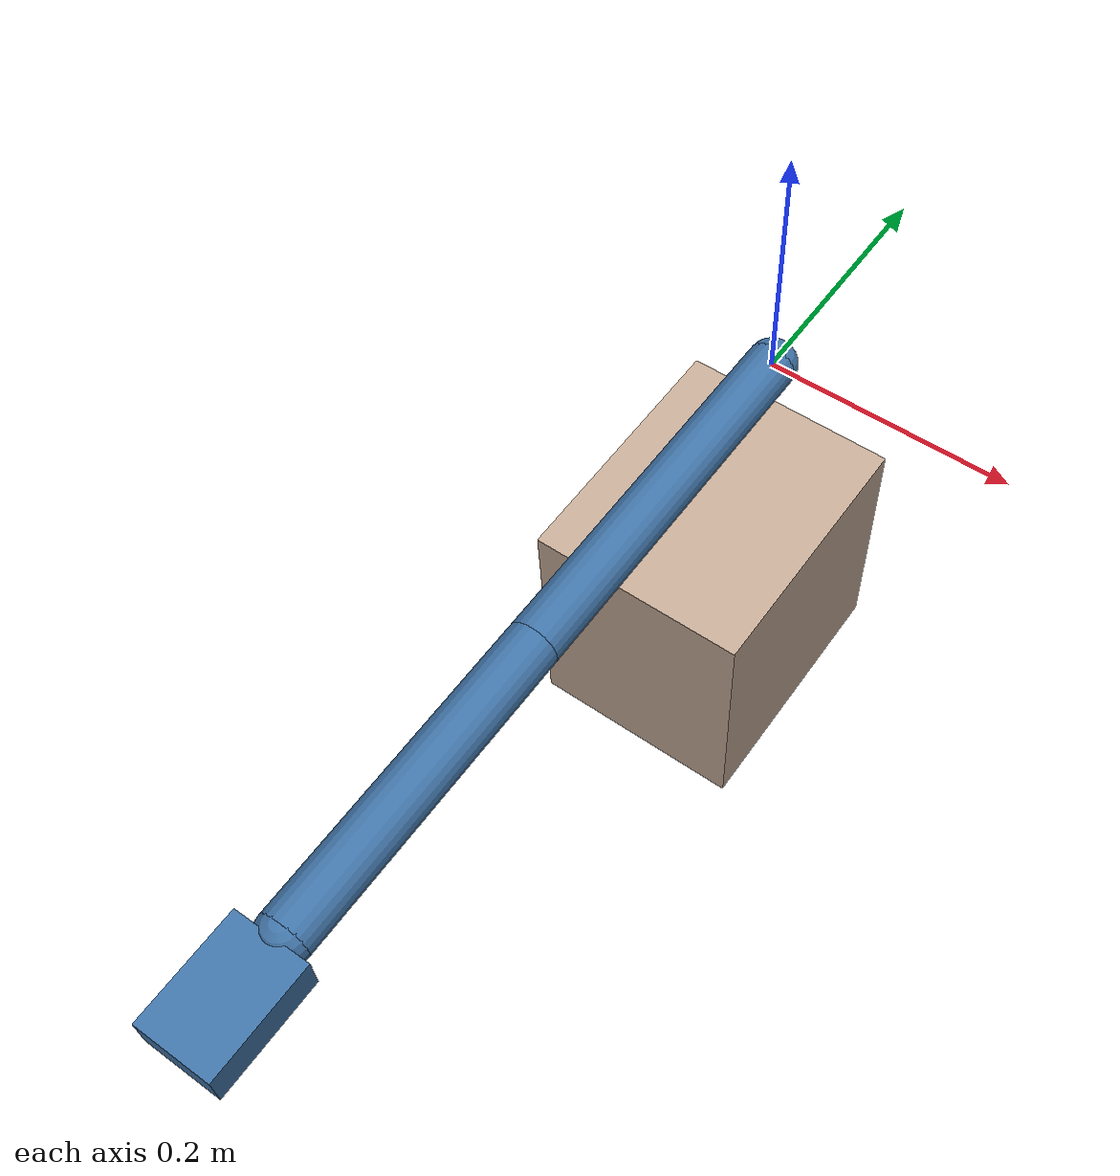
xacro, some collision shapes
<?xml version="1.0"?>
<robot xmlns:xacro="http://www.ros.org/wiki/xacro" name="upper_arm_osim_shoulder">

    <xacro:arg name="robot_prefix" default=""/>
    <xacro:arg name="robot_color" default="blue"/>
    <xacro:arg name="upper_arm_length" default="0.299"/>
    <xacro:arg name="forearm_length" default="0.248"/>

    <xacro:property name="prefix" value="$(arg robot_prefix)"/>
    <xacro:property name="color" value="$(arg robot_color)"/>
    <xacro:property name="upper_arm_length" value="$(arg upper_arm_length)"/>
    <xacro:property name="upper_arm_com_y" value="${-float(upper_arm_length) / 2.0}"/>
    <xacro:property name="forearm_length" value="$(arg forearm_length)"/>
    <xacro:property name="forearm_com_y" value="${-float(forearm_length) / 2.0}"/>
    <xacro:property name="mesh_dir" value="package://image_pose_tracking/meshes/human_subject_right_arm"/>
    <xacro:property name="color_code"  value="${
        '0.35 0.55 0.40 1' if color == 'green'
        else '0.25 0.45 0.65 1' if color == 'blue'
        else '0.72 0.70 0.65 1'}"/>

    <material name="color">
        <color rgba="${color_code}"/>
    </material>

    <material name="torso_mesh_color">
        <color rgba="0.76 0.66 0.58 1.0"/>
    </material>

    <joint name="${prefix}jRightShoulder_to_UpperTorso" type="fixed">
        <origin xyz="0 -0.073 -0.2" rpy="0 0 0"/>
        <parent link="${prefix}RightShoulder"/>
        <child link="${prefix}UpperTorso"/>
    </joint>

    <link name="${prefix}UpperTorso">
        <visual>
            <origin xyz="0 0 0" rpy="-1.5708 0 0"/>
            <geometry>
                <mesh filename="${mesh_dir}/UpperTrunk.stl" scale="0.58333333 1.03030303 1.03030303"/>
            </geometry>
            <material name="torso_mesh_color"/>
        </visual>
        <collision>
            <origin xyz="0 0 0" rpy="-1.5708 0 0"/>
            <geometry>
                <box size="0.18 0.22 0.22"/>
            </geometry>
        </collision>
    </link>

    <link name="${prefix}RightShoulder">
        <visual>
            <origin xyz="0 0 0" rpy="0 0 0" />
            <geometry>
                <sphere radius="0.02"/>
            </geometry>
            <material name="color"/>
        </visual>
    </link>

    <joint name="${prefix}jRightShoulder_elv_angle" type="revolute">
        <origin xyz="0 0 0" rpy="0 0 0"/>
        <parent link="${prefix}RightShoulder"/>
        <child link="${prefix}RightShoulder_elv_angle"/>
        <dynamics damping="0.1" friction="0.0"/>
        <limit effort="30" velocity="1.0" lower="-1.65806279" upper="2.26892803" />
        <axis xyz="0.0048 0.99908918 0.04240001" />
    </joint>

    <link name="${prefix}RightShoulder_elv_angle">
        <inertial>
            <mass value="0"/>
            <origin xyz="0 0 0" rpy="0 0 0" />
            <inertia ixx="0" iyy="0" izz="0" ixy="0" ixz="0" iyz="0"/>
        </inertial>
    </link>

    <joint name="${prefix}jRightShoulder_shoulder_elv" type="revolute">
        <origin xyz="0 0 0" rpy="0 0 0"/>
        <parent link="${prefix}RightShoulder_elv_angle"/>
        <child link="${prefix}RightShoulder_shoulder_elv"/>
        <dynamics damping="0.1" friction="0.0"/>
        <limit effort="30" velocity="1.0" lower="0" upper="3.14159265" />
        <axis xyz="-0.99826136 0.0023 0.05889802" />
    </joint>

    <link name="${prefix}RightShoulder_shoulder_elv">
        <inertial>
            <mass value="0"/>
            <origin xyz="0 0 0" rpy="0 0 0" />
            <inertia ixx="0" iyy="0" izz="0" ixy="0" ixz="0" iyz="0"/>
        </inertial>
    </link>

    <joint name="${prefix}jRightShoulder_shoulder1_r2" type="revolute">
        <origin xyz="0 0 0" rpy="0 0 0"/>
        <parent link="${prefix}RightShoulder_shoulder_elv"/>
        <child link="${prefix}RightShoulder_shoulder1_r2"/>
        <dynamics damping="0.1" friction="0.0"/>
        <limit effort="30" velocity="1.0" lower="-2.26892803" upper="1.65806279" />
        <axis xyz="0.0048 0.99908918 0.04240001" />
        <mimic joint="${prefix}jRightShoulder_elv_angle" multiplier="-1.0" offset="0.0"/>
    </joint>

    <link name="${prefix}RightShoulder_shoulder1_r2">
        <inertial>
            <mass value="0"/>
            <origin xyz="0 0 0" rpy="0 0 0" />
            <inertia ixx="0" iyy="0" izz="0" ixy="0" ixz="0" iyz="0"/>
        </inertial>
    </link>

    <joint name="${prefix}jRightShoulder_shoulder_rot" type="revolute">
        <origin xyz="0 0 0" rpy="0 0 0"/>
        <parent link="${prefix}RightShoulder_shoulder1_r2"/>
        <child link="${prefix}RightUpperArm"/>
        <dynamics damping="0.1" friction="0.0"/>
        <limit effort="30" velocity="1.0" lower="-1.57079633" upper="2.09439510" />
        <axis xyz="0.0048 0.99908918 0.04240001" />
    </joint>

    <link name="${prefix}RightUpperArm">
        <inertial>
            <mass value="2.181"/>
            <origin xyz="0 ${upper_arm_com_y} 0" rpy="0 0 0" />
            <inertia ixx="0.020332" iyy="0.0013806" izz="0.020332" ixy="0" ixz="0" iyz="0"/>
        </inertial>

        <visual>
            <origin xyz="0 ${upper_arm_com_y} 0" rpy="1.5708 0 0" />
            <geometry>
                <cylinder length="${upper_arm_length}" radius="0.02"/>
            </geometry>
            <material name="color"/>
        </visual>

        <collision>
            <origin xyz="0 ${upper_arm_com_y} 0" rpy="1.5708 0 0" />
            <geometry>
                <cylinder length="${upper_arm_length}" radius="0.02"/>
            </geometry>
        </collision>
    </link>

    <joint name="${prefix}jRightElbow_rotz" type="revolute">
        <origin xyz="0 ${-float(upper_arm_length)} 0" rpy="0 0 0"/>
        <parent link="${prefix}RightUpperArm"/>
        <child link="${prefix}RightForeArm"/>
        <dynamics damping="0.1" friction="0.0"/>
        <limit effort="30" velocity="1.0" lower="0" upper="2.53073" />
        <axis xyz="0 0 1" />
    </joint>

    <link name="${prefix}RightForeArm">
        <inertial>
            <mass value="1.454"/>
            <origin xyz="0 ${forearm_com_y} 0" rpy="0 0 0" />
            <inertia ixx="0.008948" iyy="0.00040906" izz="0.008948" ixy="0" ixz="0" iyz="0"/>
        </inertial>

        <visual>
            <origin xyz="0 ${forearm_com_y} 0" rpy="1.5708 0 0" />
            <geometry>
                <cylinder length="${forearm_length}" radius="0.02"/>
            </geometry>
            <material name="color"/>
        </visual>

        <collision>
            <origin xyz="0 ${forearm_com_y} 0" rpy="1.5708 0 0" />
            <geometry>
                <cylinder length="${forearm_length}" radius="0.02"/>
            </geometry>
        </collision>
    </link>

    <joint name="${prefix}jRightElbow_roty" type="revolute">
        <origin xyz="0 ${-float(forearm_length)} 0" rpy="0 0 0"/>
        <parent link="${prefix}RightForeArm"/>
        <child link="${prefix}RightForeArm_f1"/>
        <dynamics damping="0.1" friction="0.0"/>
        <limit effort="30" velocity="1.0" lower="-1.5708" upper="1.48353" />
        <axis xyz="0 1 0" />
    </joint>

    <link name="${prefix}RightForeArm_f1">
        <inertial>
            <mass value="0"/>
            <origin xyz="0 0 0" rpy="0 0 0" />
            <inertia ixx="0" iyy="0" izz="0" ixy="0" ixz="0" iyz="0"/>
        </inertial>
        <visual>
            <origin xyz="0 0 0" rpy="0 0 0" />
            <geometry>
                <sphere radius="0.02"/>
            </geometry>
            <material name="color"/>
        </visual>
    </link>

    <joint name="${prefix}jRightWrist_rotx" type="revolute">
        <origin xyz="0 0 0" rpy="0 0 0"/>
        <parent link="${prefix}RightForeArm_f1"/>
        <child link="${prefix}RightHand_f1"/>
        <dynamics damping="0.1" friction="0.0"/>
        <limit effort="30" velocity="1.0" lower="-1.5708" upper="1.5708" />
        <axis xyz="1 0 0" />
    </joint>

    <link name="${prefix}RightHand_f1">
        <inertial>
            <mass value="0"/>
            <origin xyz="0 0 0" rpy="0 0 0" />
            <inertia ixx="0" iyy="0" izz="0" ixy="0" ixz="0" iyz="0"/>
        </inertial>
    </link>

    <joint name="${prefix}jRightWrist_rotz" type="revolute">
        <origin xyz="0 0 0" rpy="0 0 0"/>
        <parent link="${prefix}RightHand_f1"/>
        <child link="${prefix}RightHand"/>
        <dynamics damping="0.1" friction="0.0"/>
        <limit effort="30" velocity="1.0" lower="-0.723599" upper="0.549066" />
        <axis xyz="0 0 1" />
    </joint>

    <link name="${prefix}RightHand">
        <inertial>
            <mass value="0.4362"/>
            <origin xyz="0 -0.05 0" rpy="0 0 0" />
            <inertia ixx="0.0015471" iyy="0.00073303" izz="0.0021165" ixy="0" ixz="0" iyz="0"/>
        </inertial>

        <visual>
            <origin xyz="0 -0.05 0" rpy="0 0 0" />
            <geometry>
                <box size="0.06 0.085 0.03"/>
            </geometry>
            <material name="color"/>
        </visual>

        <collision>
            <origin xyz="0 -0.05 0" rpy="0 0 0" />
            <geometry>
                <box size="0.04 0.133 0.133"/>
            </geometry>
        </collision>
    </link>

    <joint name="${prefix}jRightHandCOM" type="fixed">
        <origin xyz="0 -0.07 0" rpy="0 0 0"/>
        <parent link="${prefix}RightHand"/>
        <child link="${prefix}RightHandCOM"/>
        <axis xyz="0 0 0" />
    </joint>

    <link name="${prefix}RightHandCOM">
        <inertial>
            <mass value="0.00001"/>
            <origin xyz="0 0 0" rpy="0 0 0" />
            <inertia ixx="0" iyy="0" izz="0" ixy="0" ixz="0" iyz="0"/>
        </inertial>
        <visual>
            <origin xyz="0 0 0" rpy="0 0 0" />
            <geometry>
                <box size="0 0 0"/>
            </geometry>
            <material name="color"/>
        </visual>
    </link>

</robot>
